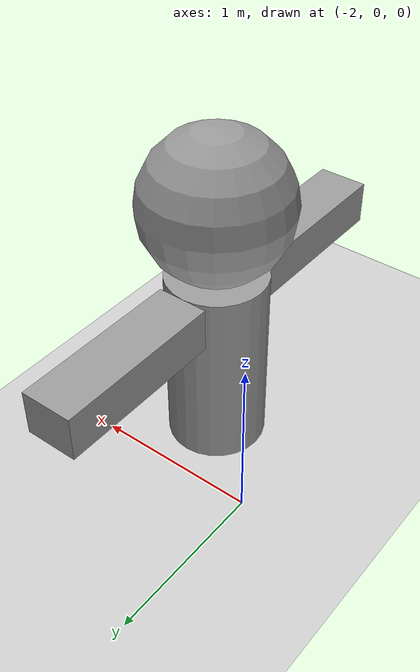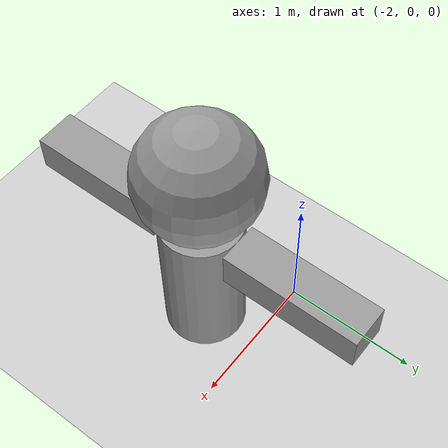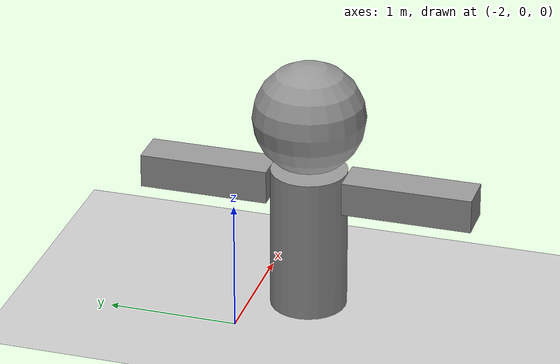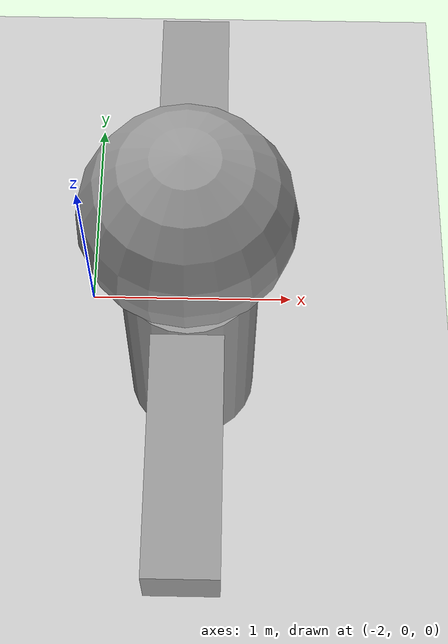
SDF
<sdf version="1.7">
 <world name="default">
  <light name="sun" type="directional">
   <pose>0 0 10 0 -0 0</pose>
   <diffuse>0.8 0.8 0.8 1</diffuse>
   <specular>0.2 0.2 0.2 1</specular>
   <attenuation>
    <range>1000</range>
    <constant>0.9</constant>
    <linear>0.01</linear>
    <quadratic>0.001</quadratic>
   </attenuation>
   <direction>-0.5 0.1 -0.9</direction>
   <spot><inner_angle>0</inner_angle><outer_angle>0</outer_angle><falloff>0</falloff></spot>
  </light>
  <model name="ground_plane">
   <static>1</static>
   <link name="link">
    <collision name="collision">
     <geometry><plane><normal>0 0 1</normal><size>100 100</size></plane></geometry>
     <surface>
      <contact><collide_bitmask>65535</collide_bitmask></contact>
      <friction><ode><mu>100</mu><mu2>50</mu2></ode></friction>
     </surface>
    </collision>
    <visual name="visual">
     <cast_shadows>0</cast_shadows>
     <geometry><plane><normal>0 0 1</normal><size>100 100</size></plane></geometry>
     <material>
      <script><uri>file://media/materials/scripts/gazebo.material</uri><name>Gazebo/Grey</name></script>
     </material>
    </visual>
   </link>
  </model>
  <gravity>0 0 -9.8</gravity>
  <magnetic_field>6e-06 2.3e-05 -4.2e-05</magnetic_field>
  <atmosphere type="adiabatic"/>
  <physics type="ode" default="true">
   <max_step_size>0.001</max_step_size>
   <real_time_factor>1</real_time_factor>
   <real_time_update_rate>1000</real_time_update_rate>
  </physics>
  <physics name="ode_70iters" type="ode">
   <real_time_update_rate>1500</real_time_update_rate>
   <ode><solver><type>quick</type><iters>70</iters></solver></ode>
  </physics>
  <scene><ambient>0.4 0.4 0.4 1</ambient><background>0.7 0.7 0.7 1</background><shadows>1</shadows></scene>
  <spherical_coordinates>
   <surface_model>EARTH_WGS84</surface_model>
   <latitude_deg>0</latitude_deg>
   <longitude_deg>0</longitude_deg>
   <elevation>0</elevation>
   <heading_deg>0</heading_deg>
  </spherical_coordinates>
  <model name="scarecrow">
   <link name="link_0">
    <inertial>
     <mass>0.445511</mass>
     <inertia>
      <ixx>0.0699644</ixx>
      <ixy>0</ixy>
      <ixz>0</ixz>
      <iyy>0.0699644</iyy>
      <iyz>0</iyz>
      <izz>0.0194792</izz>
     </inertia>
    </inertial>
    <pose>0 -1e-06 -0.518079 0 -0 0</pose>
    <visual name="visual">
     <geometry><cylinder><radius>0.295714</radius><length>1.27365</length></cylinder></geometry>
     <material>
      <lighting>1</lighting>
      <script><uri>file://media/materials/scripts/gazebo.material</uri><name>Gazebo/Grey</name></script>
      <shader type="pixel"/>
      <emissive>0 0 0 1</emissive>
     </material>
    </visual>
    <collision name="collision">
     <geometry><cylinder><radius>0.295714</radius><length>1.27365</length></cylinder></geometry>
     <surface>
      <friction>
       <ode><mu>1</mu><mu2>1</mu2><fdir1>0 0 0</fdir1><slip1>0</slip1><slip2>0</slip2></ode>
       <torsional>
        <coefficient>1</coefficient>
        <patch_radius>0</patch_radius>
        <surface_radius>0</surface_radius>
        <use_patch_radius>1</use_patch_radius>
        <ode><slip>0</slip></ode>
       </torsional>
      </friction>
      <bounce><restitution_coefficient>0</restitution_coefficient><threshold>1e+06</threshold></bounce>
      <contact>
       <collide_without_contact>0</collide_without_contact>
       <collide_without_contact_bitmask>1</collide_without_contact_bitmask>
       <collide_bitmask>1</collide_bitmask>
       <ode>
        <soft_cfm>0</soft_cfm>
        <soft_erp>0.2</soft_erp>
        <kp>1e+13</kp>
        <kd>1</kd>
        <max_vel>0.01</max_vel>
        <min_depth>0</min_depth>
       </ode>
       <bullet>
        <split_impulse>1</split_impulse>
        <split_impulse_penetration_threshold>-0.01</split_impulse_penetration_threshold>
        <soft_cfm>0</soft_cfm>
        <soft_erp>0.2</soft_erp>
        <kp>1e+13</kp>
        <kd>1</kd>
       </bullet>
      </contact>
     </surface>
    </collision>
   </link>
   <link name="link_1">
    <inertial>
     <mass>0.649087</mass>
     <inertia>
      <ixx>0.0486591</ixx>
      <ixy>0</ixy>
      <ixz>0</ixz>
      <iyy>0.0486591</iyy>
      <iyz>0</iyz>
      <izz>0.0486591</izz>
     </inertia>
    </inertial>
    <pose>0 -1e-06 0.55166 0 -0 0</pose>
    <visual name="visual">
     <geometry><sphere><radius>0.432913</radius></sphere></geometry>
     <material>
      <lighting>1</lighting>
      <script><uri>file://media/materials/scripts/gazebo.material</uri><name>Gazebo/Grey</name></script>
      <shader type="pixel"/>
      <emissive>0 0 0 1</emissive>
     </material>
    </visual>
    <collision name="collision">
     <geometry><sphere><radius>0.432913</radius></sphere></geometry>
     <surface>
      <friction>
       <ode><mu>1</mu><mu2>1</mu2><fdir1>0 0 0</fdir1><slip1>0</slip1><slip2>0</slip2></ode>
       <torsional>
        <coefficient>1</coefficient>
        <patch_radius>0</patch_radius>
        <surface_radius>0</surface_radius>
        <use_patch_radius>1</use_patch_radius>
        <ode><slip>0</slip></ode>
       </torsional>
      </friction>
      <bounce><restitution_coefficient>0</restitution_coefficient><threshold>1e+06</threshold></bounce>
      <contact>
       <collide_without_contact>0</collide_without_contact>
       <collide_without_contact_bitmask>1</collide_without_contact_bitmask>
       <collide_bitmask>1</collide_bitmask>
       <ode>
        <soft_cfm>0</soft_cfm>
        <soft_erp>0.2</soft_erp>
        <kp>1e+13</kp>
        <kd>1</kd>
        <max_vel>0.01</max_vel>
        <min_depth>0</min_depth>
       </ode>
       <bullet>
        <split_impulse>1</split_impulse>
        <split_impulse_penetration_threshold>-0.01</split_impulse_penetration_threshold>
        <soft_cfm>0</soft_cfm>
        <soft_erp>0.2</soft_erp>
        <kp>1e+13</kp>
        <kd>1</kd>
       </bullet>
      </contact>
     </surface>
    </collision>
   </link>
   <link name="link_2">
    <inertial>
     <mass>0.0793699</mass>
     <inertia>
      <ixx>0.0070687</ixx>
      <ixy>0</ixy>
      <ixz>0</ixz>
      <iyy>0.00106086</iyy>
      <iyz>0</iyz>
      <izz>0.00722047</izz>
     </inertia>
    </inertial>
    <pose>0 -0.795715 -0.021254 0 -0 0</pose>
    <visual name="visual">
     <geometry><box><size>0.302769 1 0.26215</size></box></geometry>
     <material>
      <lighting>1</lighting>
      <script><uri>file://media/materials/scripts/gazebo.material</uri><name>Gazebo/Grey</name></script>
      <shader type="pixel"/>
      <emissive>0 0 0 1</emissive>
     </material>
    </visual>
    <collision name="collision">
     <geometry><box><size>0.302769 1 0.26215</size></box></geometry>
     <surface>
      <friction>
       <ode><mu>1</mu><mu2>1</mu2><fdir1>0 0 0</fdir1><slip1>0</slip1><slip2>0</slip2></ode>
       <torsional>
        <coefficient>1</coefficient>
        <patch_radius>0</patch_radius>
        <surface_radius>0</surface_radius>
        <use_patch_radius>1</use_patch_radius>
        <ode><slip>0</slip></ode>
       </torsional>
      </friction>
      <bounce><restitution_coefficient>0</restitution_coefficient><threshold>1e+06</threshold></bounce>
      <contact>
       <collide_without_contact>0</collide_without_contact>
       <collide_without_contact_bitmask>1</collide_without_contact_bitmask>
       <collide_bitmask>1</collide_bitmask>
       <ode>
        <soft_cfm>0</soft_cfm>
        <soft_erp>0.2</soft_erp>
        <kp>1e+13</kp>
        <kd>1</kd>
        <max_vel>0.01</max_vel>
        <min_depth>0</min_depth>
       </ode>
       <bullet>
        <split_impulse>1</split_impulse>
        <split_impulse_penetration_threshold>-0.01</split_impulse_penetration_threshold>
        <soft_cfm>0</soft_cfm>
        <soft_erp>0.2</soft_erp>
        <kp>1e+13</kp>
        <kd>1</kd>
       </bullet>
      </contact>
     </surface>
    </collision>
   </link>
   <link name="link_2_clone">
    <inertial>
     <mass>0.0793699</mass>
     <inertia>
      <ixx>0.0070687</ixx>
      <ixy>0</ixy>
      <ixz>0</ixz>
      <iyy>0.00106086</iyy>
      <iyz>0</iyz>
      <izz>0.00722047</izz>
     </inertia>
    </inertial>
    <pose>0 0.795712 -0.012329 0 -0 0</pose>
    <visual name="visual">
     <geometry><box><size>0.302769 1 0.26215</size></box></geometry>
     <material>
      <lighting>1</lighting>
      <script><uri>file://media/materials/scripts/gazebo.material</uri><name>Gazebo/Grey</name></script>
      <shader type="pixel"/>
      <emissive>0 0 0 1</emissive>
     </material>
    </visual>
    <collision name="collision">
     <geometry><box><size>0.302769 1 0.26215</size></box></geometry>
     <surface>
      <friction>
       <ode><mu>1</mu><mu2>1</mu2><fdir1>0 0 0</fdir1><slip1>0</slip1><slip2>0</slip2></ode>
       <torsional>
        <coefficient>1</coefficient>
        <patch_radius>0</patch_radius>
        <surface_radius>0</surface_radius>
        <use_patch_radius>1</use_patch_radius>
        <ode><slip>0</slip></ode>
       </torsional>
      </friction>
      <bounce><restitution_coefficient>0</restitution_coefficient><threshold>1e+06</threshold></bounce>
      <contact>
       <collide_without_contact>0</collide_without_contact>
       <collide_without_contact_bitmask>1</collide_without_contact_bitmask>
       <collide_bitmask>1</collide_bitmask>
       <ode>
        <soft_cfm>0</soft_cfm>
        <soft_erp>0.2</soft_erp>
        <kp>1e+13</kp>
        <kd>1</kd>
        <max_vel>0.01</max_vel>
        <min_depth>0</min_depth>
       </ode>
       <bullet>
        <split_impulse>1</split_impulse>
        <split_impulse_penetration_threshold>-0.01</split_impulse_penetration_threshold>
        <soft_cfm>0</soft_cfm>
        <soft_erp>0.2</soft_erp>
        <kp>1e+13</kp>
        <kd>1</kd>
       </bullet>
      </contact>
     </surface>
    </collision>
   </link>
   <joint name="link_0_JOINT_0" type="fixed">
    <parent>link_0</parent>
    <child>link_1</child>
    <physics>
     <ode><limit><cfm>0</cfm><erp>0.2</erp></limit><suspension><cfm>0</cfm><erp>0.2</erp></suspension></ode>
    </physics>
   </joint>
   <joint name="link_0_JOINT_1" type="fixed">
    <parent>link_0</parent>
    <child>link_2</child>
    <physics>
     <ode><limit><cfm>0</cfm><erp>0.2</erp></limit><suspension><cfm>0</cfm><erp>0.2</erp></suspension></ode>
    </physics>
   </joint>
   <joint name="link_0_JOINT_2" type="fixed">
    <parent>link_0</parent>
    <child>link_2_clone</child>
    <physics>
     <ode><limit><cfm>0</cfm><erp>0.2</erp></limit><suspension><cfm>0</cfm><erp>0.2</erp></suspension></ode>
    </physics>
   </joint>
   <static>0</static>
   <pose>-1.48635 -0.433956 1.01808 0 -0 0</pose>
  </model>
  <light name="user_point_light_0" type="point">
   <pose>-0.500685 1.64595 1 0 -0 0</pose>
   <diffuse>0.5 0.5 0.5 1</diffuse>
   <specular>0.1 0.1 0.1 1</specular>
   <attenuation>
    <range>20</range>
    <constant>0.5</constant>
    <linear>0.01</linear>
    <quadratic>0.001</quadratic>
   </attenuation>
   <cast_shadows>0</cast_shadows>
   <direction>0 0 -1</direction>
  </light>
 </world>
</sdf>
